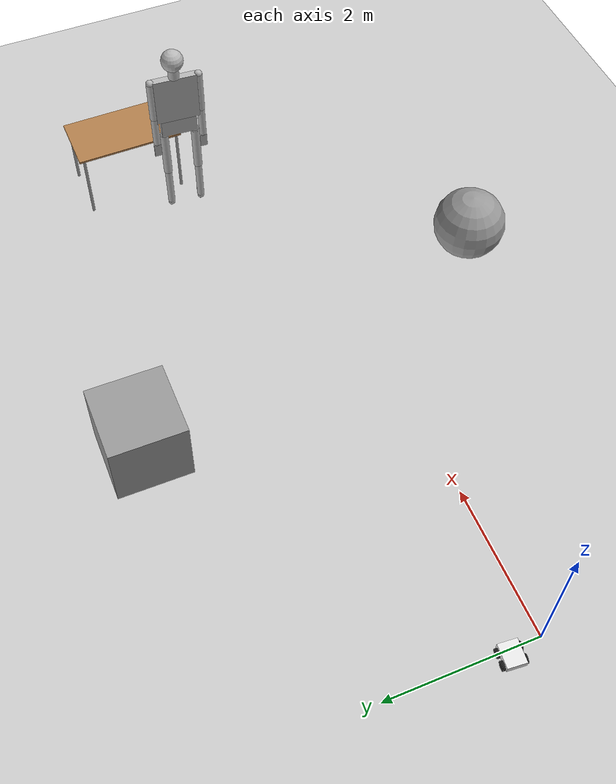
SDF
<sdf version="1.7">
 <world name="default">
  <model name="ground_plane">
   <static>1</static>
   <link name="link">
    <collision name="collision">
     <geometry><plane><normal>0 0 1</normal><size>100 100</size></plane></geometry>
     <surface>
      <contact><collide_bitmask>65535</collide_bitmask></contact>
      <friction><ode><mu>100</mu><mu2>50</mu2></ode></friction>
     </surface>
    </collision>
    <visual name="visual">
     <cast_shadows>0</cast_shadows>
     <geometry><plane><normal>0 0 1</normal><size>100 100</size></plane></geometry>
     <material>
      <script><uri>file://media/materials/scripts/gazebo.material</uri><name>Gazebo/Grey</name></script>
     </material>
    </visual>
   </link>
  </model>
  <model name="my_robot">
   <link name="base_footprint">
    <inertial>
     <pose>0.010714 0 0.098571 0 -0 0</pose>
     <mass>7</mass>
     <inertia>
      <ixx>0.0713607</ixx>
      <ixy>0</ixy>
      <ixz>0.00289286</ixz>
      <iyy>0.0436571</iyy>
      <iyz>-1.16852e-19</iyz>
      <izz>0.101646</izz>
     </inertia>
    </inertial>
    <collision name="base_footprint_fixed_joint_lump__base_link_collision">
     <pose>0 0 0.105 0 -0 0</pose>
     <geometry><box><size>0.3 0.25 0.09</size></box></geometry>
    </collision>
    <collision name="base_footprint_fixed_joint_lump__left_camera_link_collision_1">
     <pose>0.1525 0.075 0.11 0 -0 0</pose>
     <geometry><box><size>0.005 0.05 0.03</size></box></geometry>
    </collision>
    <collision name="base_footprint_fixed_joint_lump__left_wheel_front_link_collision_2">
     <pose>0.075 0.14 0.06 1.5708 -0 0</pose>
     <geometry><cylinder><length>0.03</length><radius>0.06</radius></cylinder></geometry>
     <surface><friction><ode><mu>0</mu><mu2>0</mu2></ode></friction></surface>
    </collision>
    <collision name="base_footprint_fixed_joint_lump__right_camera_link_collision_3">
     <pose>0.1525 -0.075 0.11 0 -0 0</pose>
     <geometry><box><size>0.005 0.05 0.03</size></box></geometry>
    </collision>
    <collision name="base_footprint_fixed_joint_lump__right_wheel_front_link_collision_4">
     <pose>0.075 -0.14 0.06 1.5708 -0 0</pose>
     <geometry><cylinder><length>0.03</length><radius>0.06</radius></cylinder></geometry>
     <surface><friction><ode><mu>0</mu><mu2>0</mu2></ode></friction></surface>
    </collision>
    <visual name="base_footprint_fixed_joint_lump__base_link_visual">
     <pose>0 0 0.105 0 -0 0</pose>
     <geometry><box><size>0.3 0.25 0.09</size></box></geometry>
     <material>
      <script><name>Gazebo/White</name><uri>file://media/materials/scripts/gazebo.material</uri></script>
     </material>
    </visual>
    <visual name="base_footprint_fixed_joint_lump__left_camera_link_visual_1">
     <pose>0.1525 0.075 0.11 0 -0 0</pose>
     <geometry><box><size>0.005 0.05 0.03</size></box></geometry>
     <material>
      <script><name>Gazebo/Gold</name><uri>file://media/materials/scripts/gazebo.material</uri></script>
     </material>
    </visual>
    <visual name="base_footprint_fixed_joint_lump__left_wheel_front_link_visual_2">
     <pose>0.075 0.14 0.06 1.5708 -0 0</pose>
     <geometry><cylinder><length>0.03</length><radius>0.06</radius></cylinder></geometry>
     <material>
      <script><name>Gazebo/Black</name><uri>file://media/materials/scripts/gazebo.material</uri></script>
     </material>
    </visual>
    <visual name="base_footprint_fixed_joint_lump__right_camera_link_visual_3">
     <pose>0.1525 -0.075 0.11 0 -0 0</pose>
     <geometry><box><size>0.005 0.05 0.03</size></box></geometry>
     <material>
      <script><name>Gazebo/Gold</name><uri>file://media/materials/scripts/gazebo.material</uri></script>
     </material>
    </visual>
    <visual name="base_footprint_fixed_joint_lump__right_wheel_front_link_visual_4">
     <pose>0.075 -0.14 0.06 1.5708 -0 0</pose>
     <geometry><cylinder><length>0.03</length><radius>0.06</radius></cylinder></geometry>
     <material>
      <script><name>Gazebo/Black</name><uri>file://media/materials/scripts/gazebo.material</uri></script>
     </material>
    </visual>
    <sensor name="left_camera_sensor" type="camera">
     <visualize>1</visualize>
     <update_rate>15</update_rate>
     <camera>
      <horizontal_fov>2.0944</horizontal_fov>
      <image><width>752</width><height>480</height><format>R8G8B8</format></image>
      <clip><near>0.1</near><far>100</far></clip>
      <distortion><k1>0</k1><k2>0</k2><k3>0</k3><p1>0</p1><p2>0</p2><center>376.5 240.5</center></distortion>
      <intrinsics><fx>217.08247</fx><fy>217.08247</fy><cx>376.5</cx><cy>240.5</cy></intrinsics>
     </camera>
     <plugin name="left_camera_controller" filename="libgazebo_ros_camera.so">
      <frame_name>left_camera_optical_link</frame_name>
      <camera_name>left_camera</camera_name>
      <image_width>752</image_width>
      <image_height>480</image_height>
      <ros>
       <namespace>/camera/left</namespace>
       <remapping>image_raw:=image</remapping>
       <parameter name="publish_image">1</parameter>
       <parameter name="publish_compressed">0</parameter>
       <parameter name="publish_depth">0</parameter>
       <parameter name="disable_pub_plugins">["compressed", "compressedDepth", "theora"]</parameter>
      </ros>
     </plugin>
     <pose>0.1525 0.075 0.11 0 -0 0</pose>
    </sensor>
    <sensor name="right_camera_sensor" type="camera">
     <visualize>1</visualize>
     <update_rate>15</update_rate>
     <camera>
      <horizontal_fov>2.0944</horizontal_fov>
      <image><width>752</width><height>480</height><format>R8G8B8</format></image>
      <clip><near>0.1</near><far>100</far></clip>
      <distortion><k1>0</k1><k2>0</k2><k3>0</k3><p1>0</p1><p2>0</p2><center>376.5 240.5</center></distortion>
      <intrinsics><fx>217.08247</fx><fy>217.08247</fy><cx>376.5</cx><cy>240.5</cy></intrinsics>
     </camera>
     <plugin name="right_camera_controller" filename="libgazebo_ros_camera.so">
      <frame_name>right_camera_optical_link</frame_name>
      <camera_name>right_camera</camera_name>
      <image_width>752</image_width>
      <image_height>480</image_height>
      <ros>
       <namespace>/camera/right</namespace>
       <remapping>image_raw:=image</remapping>
       <parameter name="publish_image">1</parameter>
       <parameter name="publish_compressed">0</parameter>
       <parameter name="publish_depth">0</parameter>
       <parameter name="disable_pub_plugins">["compressed", "compressedDepth", "theora"]</parameter>
      </ros>
     </plugin>
     <pose>0.1525 -0.075 0.11 0 -0 0</pose>
    </sensor>
   </link>
   <joint name="base_left_wheel_back_joint" type="revolute">
    <pose relative_to="base_footprint">-0.075 0.14 0.06 0 -0 0</pose>
    <parent>base_footprint</parent>
    <child>left_wheel_back_link</child>
    <axis>
     <xyz>0 1 0</xyz>
     <limit><effort>10</effort><velocity>10</velocity><lower>-1e+16</lower><upper>1e+16</upper></limit>
     <dynamics><spring_reference>0</spring_reference><spring_stiffness>0</spring_stiffness></dynamics>
    </axis>
   </joint>
   <link name="left_wheel_back_link">
    <pose relative_to="base_left_wheel_back_joint">0 0 0 0 -0 0</pose>
    <inertial>
     <pose>0 0 0 1.5708 -0 0</pose>
     <mass>0.5</mass>
     <inertia>
      <ixx>0.0004875</ixx>
      <ixy>0</ixy>
      <ixz>0</ixz>
      <iyy>0.0004875</iyy>
      <iyz>0</iyz>
      <izz>0.0009</izz>
     </inertia>
    </inertial>
    <collision name="left_wheel_back_link_collision">
     <pose>0 0 0 1.5708 -0 0</pose>
     <geometry><cylinder><length>0.03</length><radius>0.06</radius></cylinder></geometry>
    </collision>
    <visual name="left_wheel_back_link_visual">
     <pose>0 0 0 1.5708 -0 0</pose>
     <geometry><cylinder><length>0.03</length><radius>0.06</radius></cylinder></geometry>
     <material>
      <script><name>Gazebo/Black</name><uri>file://media/materials/scripts/gazebo.material</uri></script>
     </material>
    </visual>
   </link>
   <joint name="base_right_wheel_back_joint" type="revolute">
    <pose relative_to="base_footprint">-0.075 -0.14 0.06 0 -0 0</pose>
    <parent>base_footprint</parent>
    <child>right_wheel_back_link</child>
    <axis>
     <xyz>0 1 0</xyz>
     <limit><effort>10</effort><velocity>10</velocity><lower>-1e+16</lower><upper>1e+16</upper></limit>
     <dynamics><spring_reference>0</spring_reference><spring_stiffness>0</spring_stiffness></dynamics>
    </axis>
   </joint>
   <link name="right_wheel_back_link">
    <pose relative_to="base_right_wheel_back_joint">0 0 0 0 -0 0</pose>
    <inertial>
     <pose>0 0 0 1.5708 -0 0</pose>
     <mass>0.5</mass>
     <inertia>
      <ixx>0.0004875</ixx>
      <ixy>0</ixy>
      <ixz>0</ixz>
      <iyy>0.0004875</iyy>
      <iyz>0</iyz>
      <izz>0.0009</izz>
     </inertia>
    </inertial>
    <collision name="right_wheel_back_link_collision">
     <pose>0 0 0 1.5708 -0 0</pose>
     <geometry><cylinder><length>0.03</length><radius>0.06</radius></cylinder></geometry>
    </collision>
    <visual name="right_wheel_back_link_visual">
     <pose>0 0 0 1.5708 -0 0</pose>
     <geometry><cylinder><length>0.03</length><radius>0.06</radius></cylinder></geometry>
     <material>
      <script><name>Gazebo/Black</name><uri>file://media/materials/scripts/gazebo.material</uri></script>
     </material>
    </visual>
   </link>
   <static>0</static>
   <plugin name="diff_drive_controller" filename="libgazebo_ros_diff_drive.so">
    <update_rate>50</update_rate>
    <left_joint>base_left_wheel_back_joint</left_joint>
    <right_joint>base_right_wheel_back_joint</right_joint>
    <wheel_separation>0.28</wheel_separation>
    <wheel_diameter>0.12</wheel_diameter>
    <publish_odom>1</publish_odom>
    <publish_odom_tf>1</publish_odom_tf>
    <publish_wheel_tf>1</publish_wheel_tf>
    <odometry_topic>odom</odometry_topic>
    <odometry_frame>odom</odometry_frame>
    <robot_base_frame>base_footprint</robot_base_frame>
    <ros><namespace>/</namespace><remapping>cmd_vel:=cmd_vel</remapping><remapping>odom:=odom</remapping></ros>
    <max_wheel_torque>200</max_wheel_torque>
    <max_wheel_acceleration>10.0</max_wheel_acceleration>
    <command_topic>cmd_vel</command_topic>
   </plugin>
   <pose>-0.087835 0.442639 1e-06 -4e-06 3e-06 -0.090374</pose>
  </model>
  <model name="table_clone">
   <static>1</static>
   <link name="link">
    <collision name="surface">
     <pose>0 0 1 0 -0 0</pose>
     <geometry><box><size>1.5 0.8 0.03</size></box></geometry>
     <surface><friction><ode><mu>0.6</mu><mu2>0.6</mu2></ode></friction></surface>
    </collision>
    <visual name="visual1">
     <pose>0 0 1 0 -0 0</pose>
     <geometry><box><size>1.5 0.8 0.03</size></box></geometry>
     <material>
      <script><uri>file://media/materials/scripts/gazebo.material</uri><name>Gazebo/Wood</name></script>
     </material>
    </visual>
    <collision name="front_left_leg">
     <pose>0.68 0.38 0.5 0 -0 0</pose>
     <geometry><cylinder><radius>0.02</radius><length>1</length></cylinder></geometry>
    </collision>
    <visual name="front_left_leg">
     <pose>0.68 0.38 0.5 0 -0 0</pose>
     <geometry><cylinder><radius>0.02</radius><length>1</length></cylinder></geometry>
     <material>
      <script><uri>file://media/materials/scripts/gazebo.material</uri><name>Gazebo/Grey</name></script>
     </material>
    </visual>
    <collision name="front_right_leg">
     <pose>0.68 -0.38 0.5 0 -0 0</pose>
     <geometry><cylinder><radius>0.02</radius><length>1</length></cylinder></geometry>
    </collision>
    <visual name="front_right_leg">
     <pose>0.68 -0.38 0.5 0 -0 0</pose>
     <geometry><cylinder><radius>0.02</radius><length>1</length></cylinder></geometry>
     <material>
      <script><uri>file://media/materials/scripts/gazebo.material</uri><name>Gazebo/Grey</name></script>
     </material>
    </visual>
    <collision name="back_right_leg">
     <pose>-0.68 -0.38 0.5 0 -0 0</pose>
     <geometry><cylinder><radius>0.02</radius><length>1</length></cylinder></geometry>
    </collision>
    <visual name="back_right_leg">
     <pose>-0.68 -0.38 0.5 0 -0 0</pose>
     <geometry><cylinder><radius>0.02</radius><length>1</length></cylinder></geometry>
     <material>
      <script><uri>file://media/materials/scripts/gazebo.material</uri><name>Gazebo/Grey</name></script>
     </material>
    </visual>
    <collision name="back_left_leg">
     <pose>-0.68 0.38 0.5 0 -0 0</pose>
     <geometry><cylinder><radius>0.02</radius><length>1</length></cylinder></geometry>
    </collision>
    <visual name="back_left_leg">
     <pose>-0.68 0.38 0.5 0 -0 0</pose>
     <geometry><cylinder><radius>0.02</radius><length>1</length></cylinder></geometry>
     <material>
      <script><uri>file://media/materials/scripts/gazebo.material</uri><name>Gazebo/Grey</name></script>
     </material>
    </visual>
   </link>
   <pose>8.57439 2.15783 0 0 -0 1.58235</pose>
  </model>
  <model name="unit_sphere_0">
   <pose>5.504 -1.8854 0.5 0 -0 0</pose>
   <link name="link">
    <inertial>
     <mass>1</mass>
     <inertia><ixx>0.1</ixx><ixy>0</ixy><ixz>0</ixz><iyy>0.1</iyy><iyz>0</iyz><izz>0.1</izz></inertia>
    </inertial>
    <collision name="collision"><geometry><sphere><radius>0.5</radius></sphere></geometry></collision>
    <visual name="visual">
     <geometry><sphere><radius>0.5</radius></sphere></geometry>
     <material>
      <script><name>Gazebo/Grey</name><uri>file://media/materials/scripts/gazebo.material</uri></script>
     </material>
    </visual>
   </link>
  </model>
  <model name="unit_box_0_clone">
   <pose>3.98975 3.42562 0.499995 0 -1e-05 0</pose>
   <link name="link">
    <inertial>
     <mass>1</mass>
     <inertia>
      <ixx>0.166667</ixx>
      <ixy>0</ixy>
      <ixz>0</ixz>
      <iyy>0.166667</iyy>
      <iyz>0</iyz>
      <izz>0.166667</izz>
     </inertia>
    </inertial>
    <collision name="collision"><geometry><box><size>1 1 1</size></box></geometry></collision>
    <visual name="visual">
     <geometry><box><size>1 1 1</size></box></geometry>
     <material>
      <script><name>Gazebo/Grey</name><uri>file://media/materials/scripts/gazebo.material</uri></script>
     </material>
    </visual>
   </link>
  </model>
  <model name="ragdoll_clone_0_clone">
   <pose>7.84412 1.51237 1.39999 -1e-06 0.002388 -0.069914</pose>
   <link name="hip">
    <inertial>
     <inertia><ixx>0.1</ixx><ixy>0</ixy><ixz>0</ixz><iyy>0.1</iyy><iyz>0</iyz><izz>0.1</izz></inertia>
     <mass>10</mass>
    </inertial>
    <collision name="hip_geom">
     <pose>0 0 0.125 0 -0 0</pose>
     <geometry><box><size>0.1 0.5 0.25</size></box></geometry>
     <surface>
      <friction><ode><mu>-1</mu><mu2>-1</mu2><fdir1>0 0 0</fdir1><slip1>0</slip1><slip2>0</slip2></ode></friction>
      <bounce><restitution_coefficient>0</restitution_coefficient><threshold>100000</threshold></bounce>
      <contact>
       <ode>
        <soft_cfm>0</soft_cfm>
        <soft_erp>0.2</soft_erp>
        <kp>1e+12</kp>
        <kd>1</kd>
        <max_vel>0</max_vel>
        <min_depth>0.001</min_depth>
       </ode>
      </contact>
     </surface>
    </collision>
    <visual name="hip_geom_visual">
     <pose>0 0 0.125 0 -0 0</pose>
     <geometry><box><size>0.1 0.5 0.25</size></box></geometry>
    </visual>
    <gravity>0</gravity>
   </link>
   <link name="l_thigh_pan">
    <pose>0 0.22 0 0 -0 0</pose>
    <inertial>
     <inertia><ixx>0.01</ixx><ixy>0</ixy><ixz>0</ixz><iyy>0.01</iyy><iyz>0</iyz><izz>0.01</izz></inertia>
     <mass>1</mass>
    </inertial>
    <collision name="l_thigh_pan_geom">
     <pose>0 0 -0.03 0 -0 0</pose>
     <geometry><sphere><radius>0.06</radius></sphere></geometry>
     <surface>
      <friction><ode><mu>-1</mu><mu2>-1</mu2><fdir1>0 0 0</fdir1><slip1>0</slip1><slip2>0</slip2></ode></friction>
      <bounce><restitution_coefficient>0</restitution_coefficient><threshold>100000</threshold></bounce>
      <contact>
       <ode>
        <soft_cfm>0</soft_cfm>
        <soft_erp>0.2</soft_erp>
        <kp>1e+12</kp>
        <kd>1</kd>
        <max_vel>0</max_vel>
        <min_depth>0.001</min_depth>
       </ode>
      </contact>
     </surface>
    </collision>
    <visual name="l_thigh_pan_geom_visual">
     <pose>0 0 -0.03 0 -0 0</pose>
     <geometry><sphere><radius>0.06</radius></sphere></geometry>
    </visual>
    <gravity>0</gravity>
   </link>
   <link name="l_thigh_lift">
    <pose>0 0.22 0 0 -0 0</pose>
    <inertial>
     <inertia><ixx>0.05</ixx><ixy>0</ixy><ixz>0</ixz><iyy>0.05</iyy><iyz>0</iyz><izz>0.05</izz></inertia>
     <mass>5</mass>
    </inertial>
    <collision name="l_thigh_lift_geom">
     <pose>0 0 -0.35 0 -0 0</pose>
     <geometry><cylinder><radius>0.06</radius><length>0.7</length></cylinder></geometry>
     <surface>
      <friction><ode><mu>-1</mu><mu2>-1</mu2><fdir1>0 0 0</fdir1><slip1>0</slip1><slip2>0</slip2></ode></friction>
      <bounce><restitution_coefficient>0</restitution_coefficient><threshold>100000</threshold></bounce>
      <contact>
       <ode>
        <soft_cfm>0</soft_cfm>
        <soft_erp>0.2</soft_erp>
        <kp>1e+12</kp>
        <kd>1</kd>
        <max_vel>0</max_vel>
        <min_depth>0.001</min_depth>
       </ode>
      </contact>
     </surface>
    </collision>
    <visual name="l_thigh_lift_geom_visual">
     <pose>0 0 -0.35 0 -0 0</pose>
     <geometry><cylinder><radius>0.06</radius><length>0.7</length></cylinder></geometry>
    </visual>
    <gravity>0</gravity>
   </link>
   <link name="l_calf">
    <pose>0 0.22 -0.7 0 -0 0</pose>
    <inertial>
     <inertia><ixx>0.02</ixx><ixy>0</ixy><ixz>0</ixz><iyy>0.02</iyy><iyz>0</iyz><izz>0.02</izz></inertia>
     <mass>2</mass>
    </inertial>
    <collision name="l_calf_geom">
     <pose>0 0 -0.3 0 -0 0</pose>
     <geometry><cylinder><radius>0.05</radius><length>0.6</length></cylinder></geometry>
     <surface>
      <friction><ode><mu>-1</mu><mu2>-1</mu2><fdir1>0 0 0</fdir1><slip1>0</slip1><slip2>0</slip2></ode></friction>
      <bounce><restitution_coefficient>0</restitution_coefficient><threshold>100000</threshold></bounce>
      <contact>
       <ode>
        <soft_cfm>0</soft_cfm>
        <soft_erp>0.2</soft_erp>
        <kp>1e+12</kp>
        <kd>1</kd>
        <max_vel>0</max_vel>
        <min_depth>0.001</min_depth>
       </ode>
      </contact>
     </surface>
    </collision>
    <visual name="l_calf_geom_visual">
     <pose>0 0 -0.3 0 -0 0</pose>
     <geometry><cylinder><radius>0.05</radius><length>0.6</length></cylinder></geometry>
    </visual>
    <gravity>0</gravity>
   </link>
   <link name="l_ankle">
    <pose>0 0.22 -1.325 0 -0 0</pose>
    <inertial>
     <inertia><ixx>0.01</ixx><ixy>0</ixy><ixz>0</ixz><iyy>0.01</iyy><iyz>0</iyz><izz>0.01</izz></inertia>
     <mass>1</mass>
    </inertial>
    <collision name="l_ankle_geom">
     <geometry><sphere><radius>0.05</radius></sphere></geometry>
     <surface>
      <friction><ode><mu>-1</mu><mu2>-1</mu2><fdir1>0 0 0</fdir1><slip1>0</slip1><slip2>0</slip2></ode></friction>
      <bounce><restitution_coefficient>0</restitution_coefficient><threshold>100000</threshold></bounce>
      <contact>
       <ode>
        <soft_cfm>0</soft_cfm>
        <soft_erp>0.2</soft_erp>
        <kp>1e+12</kp>
        <kd>1</kd>
        <max_vel>0</max_vel>
        <min_depth>0.001</min_depth>
       </ode>
      </contact>
     </surface>
    </collision>
    <visual name="l_ankle_geom_visual"><geometry><sphere><radius>0.05</radius></sphere></geometry></visual>
    <gravity>0</gravity>
   </link>
   <link name="l_foot">
    <pose>0 0.22 -1.35 0 -0 0</pose>
    <inertial>
     <pose>0.1 0 0 0 -0 0</pose>
     <inertia><ixx>0.01</ixx><ixy>0</ixy><ixz>0</ixz><iyy>0.01</iyy><iyz>0</iyz><izz>0.01</izz></inertia>
     <mass>1</mass>
    </inertial>
    <collision name="l_foot_geom">
     <pose>0.1 0 -0.025 0 -0 0</pose>
     <geometry><box><size>0.2 0.03 0.05</size></box></geometry>
     <surface>
      <friction><ode><mu>-1</mu><mu2>-1</mu2><fdir1>0 0 0</fdir1><slip1>0</slip1><slip2>0</slip2></ode></friction>
      <bounce><restitution_coefficient>0</restitution_coefficient><threshold>100000</threshold></bounce>
      <contact>
       <ode>
        <soft_cfm>0</soft_cfm>
        <soft_erp>0.2</soft_erp>
        <kp>1e+12</kp>
        <kd>1</kd>
        <max_vel>0</max_vel>
        <min_depth>0.001</min_depth>
       </ode>
      </contact>
     </surface>
    </collision>
    <visual name="l_foot_geom_visual">
     <pose>0.1 0 -0.025 0 -0 0</pose>
     <geometry><box><size>0.2 0.03 0.05</size></box></geometry>
    </visual>
   </link>
   <link name="r_thigh_pan">
    <pose>0 -0.22 0 0 -0 0</pose>
    <inertial>
     <inertia><ixx>0.01</ixx><ixy>0</ixy><ixz>0</ixz><iyy>0.01</iyy><iyz>0</iyz><izz>0.01</izz></inertia>
     <mass>1</mass>
    </inertial>
    <collision name="r_thigh_pan_geom">
     <pose>0 0 -0.03 0 -0 0</pose>
     <geometry><sphere><radius>0.06</radius></sphere></geometry>
     <surface>
      <friction><ode><mu>-1</mu><mu2>-1</mu2><fdir1>0 0 0</fdir1><slip1>0</slip1><slip2>0</slip2></ode></friction>
      <bounce><restitution_coefficient>0</restitution_coefficient><threshold>100000</threshold></bounce>
      <contact>
       <ode>
        <soft_cfm>0</soft_cfm>
        <soft_erp>0.2</soft_erp>
        <kp>1e+12</kp>
        <kd>1</kd>
        <max_vel>0</max_vel>
        <min_depth>0.001</min_depth>
       </ode>
      </contact>
     </surface>
    </collision>
    <visual name="r_thigh_pan_geom_visual">
     <pose>0 0 -0.03 0 -0 0</pose>
     <geometry><sphere><radius>0.06</radius></sphere></geometry>
    </visual>
    <gravity>0</gravity>
   </link>
   <link name="r_thigh_lift">
    <pose>0 -0.22 0 0 -0 0</pose>
    <inertial>
     <inertia><ixx>0.05</ixx><ixy>0</ixy><ixz>0</ixz><iyy>0.05</iyy><iyz>0</iyz><izz>0.05</izz></inertia>
     <mass>5</mass>
    </inertial>
    <collision name="r_thigh_lift_geom">
     <pose>0 0 -0.35 0 -0 0</pose>
     <geometry><cylinder><radius>0.06</radius><length>0.7</length></cylinder></geometry>
     <surface>
      <friction><ode><mu>-1</mu><mu2>-1</mu2><fdir1>0 0 0</fdir1><slip1>0</slip1><slip2>0</slip2></ode></friction>
      <bounce><restitution_coefficient>0</restitution_coefficient><threshold>100000</threshold></bounce>
      <contact>
       <ode>
        <soft_cfm>0</soft_cfm>
        <soft_erp>0.2</soft_erp>
        <kp>1e+12</kp>
        <kd>1</kd>
        <max_vel>0</max_vel>
        <min_depth>0.001</min_depth>
       </ode>
      </contact>
     </surface>
    </collision>
    <visual name="r_thigh_lift_geom_visual">
     <pose>0 0 -0.35 0 -0 0</pose>
     <geometry><cylinder><radius>0.06</radius><length>0.7</length></cylinder></geometry>
    </visual>
    <gravity>0</gravity>
   </link>
   <link name="r_calf">
    <pose>0 -0.22 -0.7 0 -0 0</pose>
    <inertial>
     <inertia><ixx>0.02</ixx><ixy>0</ixy><ixz>0</ixz><iyy>0.02</iyy><iyz>0</iyz><izz>0.02</izz></inertia>
     <mass>2</mass>
    </inertial>
    <collision name="r_calf_geom">
     <pose>0 0 -0.3 0 -0 0</pose>
     <geometry><cylinder><radius>0.05</radius><length>0.6</length></cylinder></geometry>
     <surface>
      <friction><ode><mu>-1</mu><mu2>-1</mu2><fdir1>0 0 0</fdir1><slip1>0</slip1><slip2>0</slip2></ode></friction>
      <bounce><restitution_coefficient>0</restitution_coefficient><threshold>100000</threshold></bounce>
      <contact>
       <ode>
        <soft_cfm>0</soft_cfm>
        <soft_erp>0.2</soft_erp>
        <kp>1e+12</kp>
        <kd>1</kd>
        <max_vel>0</max_vel>
        <min_depth>0.001</min_depth>
       </ode>
      </contact>
     </surface>
    </collision>
    <visual name="r_calf_geom_visual">
     <pose>0 0 -0.3 0 -0 0</pose>
     <geometry><cylinder><radius>0.05</radius><length>0.6</length></cylinder></geometry>
    </visual>
    <gravity>0</gravity>
   </link>
   <link name="r_ankle">
    <pose>0 -0.22 -1.325 0 -0 0</pose>
    <inertial>
     <inertia><ixx>0.01</ixx><ixy>0</ixy><ixz>0</ixz><iyy>0.01</iyy><iyz>0</iyz><izz>0.01</izz></inertia>
     <mass>1</mass>
    </inertial>
    <collision name="r_ankle_geom">
     <geometry><sphere><radius>0.05</radius></sphere></geometry>
     <surface>
      <friction><ode><mu>-1</mu><mu2>-1</mu2><fdir1>0 0 0</fdir1><slip1>0</slip1><slip2>0</slip2></ode></friction>
      <bounce><restitution_coefficient>0</restitution_coefficient><threshold>100000</threshold></bounce>
      <contact>
       <ode>
        <soft_cfm>0</soft_cfm>
        <soft_erp>0.2</soft_erp>
        <kp>1e+12</kp>
        <kd>1</kd>
        <max_vel>0</max_vel>
        <min_depth>0.001</min_depth>
       </ode>
      </contact>
     </surface>
    </collision>
    <visual name="r_ankle_geom_visual"><geometry><sphere><radius>0.05</radius></sphere></geometry></visual>
    <gravity>0</gravity>
   </link>
   <link name="r_foot">
    <pose>0 -0.22 -1.35 0 -0 0</pose>
    <inertial>
     <pose>0.1 0 0 0 -0 0</pose>
     <inertia><ixx>0.01</ixx><ixy>0</ixy><ixz>0</ixz><iyy>0.01</iyy><iyz>0</iyz><izz>0.01</izz></inertia>
     <mass>1</mass>
    </inertial>
    <collision name="r_foot_geom">
     <pose>0.1 0 -0.025 0 -0 0</pose>
     <geometry><box><size>0.2 0.03 0.05</size></box></geometry>
     <surface>
      <friction><ode><mu>-1</mu><mu2>-1</mu2><fdir1>0 0 0</fdir1><slip1>0</slip1><slip2>0</slip2></ode></friction>
      <bounce><restitution_coefficient>0</restitution_coefficient><threshold>100000</threshold></bounce>
      <contact>
       <ode>
        <soft_cfm>0</soft_cfm>
        <soft_erp>0.2</soft_erp>
        <kp>1e+12</kp>
        <kd>1</kd>
        <max_vel>0</max_vel>
        <min_depth>0.001</min_depth>
       </ode>
      </contact>
     </surface>
    </collision>
    <visual name="r_foot_geom_visual">
     <pose>0.1 0 -0.025 0 -0 0</pose>
     <geometry><box><size>0.2 0.03 0.05</size></box></geometry>
    </visual>
   </link>
   <link name="torso">
    <pose>0 0 0.25 0 -0 0</pose>
    <inertial>
     <inertia><ixx>0.3</ixx><ixy>0</ixy><ixz>0</ixz><iyy>0.3</iyy><iyz>0</iyz><izz>0.3</izz></inertia>
     <mass>30</mass>
    </inertial>
    <collision name="torso_geom">
     <pose>0 0 0.35 0 -0 0</pose>
     <geometry><box><size>0.1 0.6 0.7</size></box></geometry>
     <surface>
      <friction><ode><mu>-1</mu><mu2>-1</mu2><fdir1>0 0 0</fdir1><slip1>0</slip1><slip2>0</slip2></ode></friction>
      <bounce><restitution_coefficient>0</restitution_coefficient><threshold>100000</threshold></bounce>
      <contact>
       <ode>
        <soft_cfm>0</soft_cfm>
        <soft_erp>0.2</soft_erp>
        <kp>1e+12</kp>
        <kd>1</kd>
        <max_vel>0</max_vel>
        <min_depth>0.001</min_depth>
       </ode>
      </contact>
     </surface>
    </collision>
    <visual name="torso_geom_visual">
     <pose>0 0 0.35 0 -0 0</pose>
     <geometry><box><size>0.1 0.6 0.7</size></box></geometry>
    </visual>
    <gravity>0</gravity>
   </link>
   <link name="l_shoulder">
    <pose>0 0.3275 0.9225 0 -0 0</pose>
    <inertial>
     <inertia><ixx>0.01</ixx><ixy>0</ixy><ixz>0</ixz><iyy>0.01</iyy><iyz>0</iyz><izz>0.01</izz></inertia>
     <mass>1</mass>
    </inertial>
    <collision name="l_shoulder_geom">
     <geometry><sphere><radius>0.055</radius></sphere></geometry>
     <surface>
      <friction><ode><mu>-1</mu><mu2>-1</mu2><fdir1>0 0 0</fdir1><slip1>0</slip1><slip2>0</slip2></ode></friction>
      <bounce><restitution_coefficient>0</restitution_coefficient><threshold>100000</threshold></bounce>
      <contact>
       <ode>
        <soft_cfm>0</soft_cfm>
        <soft_erp>0.2</soft_erp>
        <kp>1e+12</kp>
        <kd>1</kd>
        <max_vel>0</max_vel>
        <min_depth>0.001</min_depth>
       </ode>
      </contact>
     </surface>
    </collision>
    <visual name="l_shoulder_geom_visual"><geometry><sphere><radius>0.055</radius></sphere></geometry></visual>
    <gravity>0</gravity>
   </link>
   <link name="l_upper_arm">
    <pose>0 0.3275 0.9225 0 -0 0</pose>
    <inertial>
     <inertia><ixx>0.02</ixx><ixy>0</ixy><ixz>0</ixz><iyy>0.02</iyy><iyz>0</iyz><izz>0.02</izz></inertia>
     <mass>2</mass>
    </inertial>
    <collision name="l_upper_arm_geom">
     <pose>0 0 -0.3 0 -0 0</pose>
     <geometry><cylinder><radius>0.055</radius><length>0.6</length></cylinder></geometry>
     <surface>
      <friction><ode><mu>-1</mu><mu2>-1</mu2><fdir1>0 0 0</fdir1><slip1>0</slip1><slip2>0</slip2></ode></friction>
      <bounce><restitution_coefficient>0</restitution_coefficient><threshold>100000</threshold></bounce>
      <contact>
       <ode>
        <soft_cfm>0</soft_cfm>
        <soft_erp>0.2</soft_erp>
        <kp>1e+12</kp>
        <kd>1</kd>
        <max_vel>0</max_vel>
        <min_depth>0.001</min_depth>
       </ode>
      </contact>
     </surface>
    </collision>
    <visual name="l_upper_arm_geom_visual">
     <pose>0 0 -0.3 0 -0 0</pose>
     <geometry><cylinder><radius>0.055</radius><length>0.6</length></cylinder></geometry>
    </visual>
    <gravity>0</gravity>
   </link>
   <link name="l_forearm">
    <pose>0 0.3275 0.3225 0 -0 0</pose>
    <inertial>
     <inertia><ixx>0.01</ixx><ixy>0</ixy><ixz>0</ixz><iyy>0.01</iyy><iyz>0</iyz><izz>0.01</izz></inertia>
     <mass>1</mass>
    </inertial>
    <collision name="l_forearm_geom">
     <pose>0 0 -0.225 0 -0 0</pose>
     <geometry><cylinder><radius>0.05</radius><length>0.45</length></cylinder></geometry>
     <surface>
      <friction><ode><mu>-1</mu><mu2>-1</mu2><fdir1>0 0 0</fdir1><slip1>0</slip1><slip2>0</slip2></ode></friction>
      <bounce><restitution_coefficient>0</restitution_coefficient><threshold>100000</threshold></bounce>
      <contact>
       <ode>
        <soft_cfm>0</soft_cfm>
        <soft_erp>0.2</soft_erp>
        <kp>1e+12</kp>
        <kd>1</kd>
        <max_vel>0</max_vel>
        <min_depth>0.001</min_depth>
       </ode>
      </contact>
     </surface>
    </collision>
    <visual name="l_forearm_geom_visual">
     <pose>0 0 -0.225 0 -0 0</pose>
     <geometry><cylinder><radius>0.05</radius><length>0.45</length></cylinder></geometry>
    </visual>
    <gravity>0</gravity>
   </link>
   <link name="l_wrist">
    <pose>0 0.3275 -0.1425 0 -0 0</pose>
    <inertial>
     <inertia><ixx>0.01</ixx><ixy>0</ixy><ixz>0</ixz><iyy>0.01</iyy><iyz>0</iyz><izz>0.01</izz></inertia>
     <mass>1</mass>
    </inertial>
    <collision name="l_wrist_geom">
     <geometry><sphere><radius>0.03</radius></sphere></geometry>
     <surface>
      <friction><ode><mu>-1</mu><mu2>-1</mu2><fdir1>0 0 0</fdir1><slip1>0</slip1><slip2>0</slip2></ode></friction>
      <bounce><restitution_coefficient>0</restitution_coefficient><threshold>100000</threshold></bounce>
      <contact>
       <ode>
        <soft_cfm>0</soft_cfm>
        <soft_erp>0.2</soft_erp>
        <kp>1e+12</kp>
        <kd>1</kd>
        <max_vel>0</max_vel>
        <min_depth>0.001</min_depth>
       </ode>
      </contact>
     </surface>
    </collision>
    <visual name="l_wrist_geom_visual"><geometry><sphere><radius>0.03</radius></sphere></geometry></visual>
    <gravity>0</gravity>
   </link>
   <link name="l_hand">
    <pose>0 0.3275 -0.1575 0 -0 0</pose>
    <inertial>
     <inertia><ixx>0.01</ixx><ixy>0</ixy><ixz>0</ixz><iyy>0.01</iyy><iyz>0</iyz><izz>0.01</izz></inertia>
     <mass>1</mass>
    </inertial>
    <collision name="l_hand_geom">
     <pose>0 0 -0.1 0 -0 0</pose>
     <geometry><box><size>0.03 0.1 0.2</size></box></geometry>
     <surface>
      <friction><ode><mu>-1</mu><mu2>-1</mu2><fdir1>0 0 0</fdir1><slip1>0</slip1><slip2>0</slip2></ode></friction>
      <bounce><restitution_coefficient>0</restitution_coefficient><threshold>100000</threshold></bounce>
      <contact>
       <ode>
        <soft_cfm>0</soft_cfm>
        <soft_erp>0.2</soft_erp>
        <kp>1e+12</kp>
        <kd>1</kd>
        <max_vel>0</max_vel>
        <min_depth>0.001</min_depth>
       </ode>
      </contact>
     </surface>
    </collision>
    <visual name="l_hand_geom_visual">
     <pose>0 0 -0.1 0 -0 0</pose>
     <geometry><box><size>0.03 0.1 0.2</size></box></geometry>
    </visual>
    <gravity>0</gravity>
   </link>
   <link name="neck">
    <pose>0 0 0.95 0 -0 0</pose>
    <inertial>
     <inertia><ixx>0.01</ixx><ixy>0</ixy><ixz>0</ixz><iyy>0.01</iyy><iyz>0</iyz><izz>0.01</izz></inertia>
     <mass>1</mass>
    </inertial>
    <collision name="neck_geom">
     <pose>0 0 0.1 0 -0 0</pose>
     <geometry><cylinder><radius>0.075</radius><length>0.2</length></cylinder></geometry>
     <surface>
      <friction><ode><mu>-1</mu><mu2>-1</mu2><fdir1>0 0 0</fdir1><slip1>0</slip1><slip2>0</slip2></ode></friction>
      <bounce><restitution_coefficient>0</restitution_coefficient><threshold>100000</threshold></bounce>
      <contact>
       <ode>
        <soft_cfm>0</soft_cfm>
        <soft_erp>0.2</soft_erp>
        <kp>1e+12</kp>
        <kd>1</kd>
        <max_vel>0</max_vel>
        <min_depth>0.001</min_depth>
       </ode>
      </contact>
     </surface>
    </collision>
    <visual name="neck_geom_visual">
     <pose>0 0 0.1 0 -0 0</pose>
     <geometry><cylinder><radius>0.075</radius><length>0.2</length></cylinder></geometry>
    </visual>
    <gravity>0</gravity>
   </link>
   <link name="head">
    <pose>0 0 1.225 0 -0 0</pose>
    <inertial>
     <inertia><ixx>0.1</ixx><ixy>0</ixy><ixz>0</ixz><iyy>0.1</iyy><iyz>0</iyz><izz>0.1</izz></inertia>
     <mass>10</mass>
    </inertial>
    <collision name="head_geom">
     <geometry><sphere><radius>0.15</radius></sphere></geometry>
     <surface>
      <friction><ode><mu>-1</mu><mu2>-1</mu2><fdir1>0 0 0</fdir1><slip1>0</slip1><slip2>0</slip2></ode></friction>
      <bounce><restitution_coefficient>0</restitution_coefficient><threshold>100000</threshold></bounce>
      <contact>
       <ode>
        <soft_cfm>0</soft_cfm>
        <soft_erp>0.2</soft_erp>
        <kp>1e+12</kp>
        <kd>1</kd>
        <max_vel>0</max_vel>
        <min_depth>0.001</min_depth>
       </ode>
      </contact>
     </surface>
    </collision>
    <visual name="head_geom_visual"><geometry><sphere><radius>0.15</radius></sphere></geometry></visual>
    <gravity>0</gravity>
   </link>
   <link name="r_shoulder">
    <pose>0 -0.3275 0.9225 0 -0 0</pose>
    <inertial>
     <inertia><ixx>0.01</ixx><ixy>0</ixy><ixz>0</ixz><iyy>0.01</iyy><iyz>0</iyz><izz>0.01</izz></inertia>
     <mass>1</mass>
    </inertial>
    <collision name="r_shoulder_geom">
     <geometry><sphere><radius>0.055</radius></sphere></geometry>
     <surface>
      <friction><ode><mu>-1</mu><mu2>-1</mu2><fdir1>0 0 0</fdir1><slip1>0</slip1><slip2>0</slip2></ode></friction>
      <bounce><restitution_coefficient>0</restitution_coefficient><threshold>100000</threshold></bounce>
      <contact>
       <ode>
        <soft_cfm>0</soft_cfm>
        <soft_erp>0.2</soft_erp>
        <kp>1e+12</kp>
        <kd>1</kd>
        <max_vel>0</max_vel>
        <min_depth>0.001</min_depth>
       </ode>
      </contact>
     </surface>
    </collision>
    <visual name="r_shoulder_geom_visual"><geometry><sphere><radius>0.055</radius></sphere></geometry></visual>
    <gravity>0</gravity>
   </link>
   <link name="r_upper_arm">
    <pose>0 -0.3275 0.9225 0 -0 0</pose>
    <inertial>
     <inertia><ixx>0.02</ixx><ixy>0</ixy><ixz>0</ixz><iyy>0.02</iyy><iyz>0</iyz><izz>0.02</izz></inertia>
     <mass>2</mass>
    </inertial>
    <collision name="r_upper_arm_geom">
     <pose>0 0 -0.3 0 -0 0</pose>
     <geometry><cylinder><radius>0.055</radius><length>0.6</length></cylinder></geometry>
     <surface>
      <friction><ode><mu>-1</mu><mu2>-1</mu2><fdir1>0 0 0</fdir1><slip1>0</slip1><slip2>0</slip2></ode></friction>
      <bounce><restitution_coefficient>0</restitution_coefficient><threshold>100000</threshold></bounce>
      <contact>
       <ode>
        <soft_cfm>0</soft_cfm>
        <soft_erp>0.2</soft_erp>
        <kp>1e+12</kp>
        <kd>1</kd>
        <max_vel>0</max_vel>
        <min_depth>0.001</min_depth>
       </ode>
      </contact>
     </surface>
    </collision>
    <visual name="r_upper_arm_geom_visual">
     <pose>0 0 -0.3 0 -0 0</pose>
     <geometry><cylinder><radius>0.055</radius><length>0.6</length></cylinder></geometry>
    </visual>
    <gravity>0</gravity>
   </link>
   <link name="r_forearm">
    <pose>0 -0.3275 0.3225 0 -0 0</pose>
    <inertial>
     <inertia><ixx>0.01</ixx><ixy>0</ixy><ixz>0</ixz><iyy>0.01</iyy><iyz>0</iyz><izz>0.01</izz></inertia>
     <mass>1</mass>
    </inertial>
    <collision name="r_forearm_geom">
     <pose>0 0 -0.225 0 -0 0</pose>
     <geometry><cylinder><radius>0.05</radius><length>0.45</length></cylinder></geometry>
     <surface>
      <friction><ode><mu>-1</mu><mu2>-1</mu2><fdir1>0 0 0</fdir1><slip1>0</slip1><slip2>0</slip2></ode></friction>
      <bounce><restitution_coefficient>0</restitution_coefficient><threshold>100000</threshold></bounce>
      <contact>
       <ode>
        <soft_cfm>0</soft_cfm>
        <soft_erp>0.2</soft_erp>
        <kp>1e+12</kp>
        <kd>1</kd>
        <max_vel>0</max_vel>
        <min_depth>0.001</min_depth>
       </ode>
      </contact>
     </surface>
    </collision>
    <visual name="r_forearm_geom_visual">
     <pose>0 0 -0.225 0 -0 0</pose>
     <geometry><cylinder><radius>0.05</radius><length>0.45</length></cylinder></geometry>
    </visual>
    <gravity>0</gravity>
   </link>
   <link name="r_wrist">
    <pose>0 -0.3275 -0.1425 0 -0 0</pose>
    <inertial>
     <inertia><ixx>0.01</ixx><ixy>0</ixy><ixz>0</ixz><iyy>0.01</iyy><iyz>0</iyz><izz>0.01</izz></inertia>
     <mass>1</mass>
    </inertial>
    <collision name="r_wrist_geom">
     <geometry><sphere><radius>0.03</radius></sphere></geometry>
     <surface>
      <friction><ode><mu>-1</mu><mu2>-1</mu2><fdir1>0 0 0</fdir1><slip1>0</slip1><slip2>0</slip2></ode></friction>
      <bounce><restitution_coefficient>0</restitution_coefficient><threshold>100000</threshold></bounce>
      <contact>
       <ode>
        <soft_cfm>0</soft_cfm>
        <soft_erp>0.2</soft_erp>
        <kp>1e+12</kp>
        <kd>1</kd>
        <max_vel>0</max_vel>
        <min_depth>0.001</min_depth>
       </ode>
      </contact>
     </surface>
    </collision>
    <visual name="r_wrist_geom_visual"><geometry><sphere><radius>0.03</radius></sphere></geometry></visual>
    <gravity>0</gravity>
   </link>
   <link name="r_hand">
    <pose>0 -0.3275 -0.1575 0 -0 0</pose>
    <inertial>
     <inertia><ixx>0.01</ixx><ixy>0</ixy><ixz>0</ixz><iyy>0.01</iyy><iyz>0</iyz><izz>0.01</izz></inertia>
     <mass>1</mass>
    </inertial>
    <collision name="r_hand_geom">
     <pose>0 0 -0.1 0 -0 0</pose>
     <geometry><box><size>0.03 0.1 0.2</size></box></geometry>
     <surface>
      <friction><ode><mu>-1</mu><mu2>-1</mu2><fdir1>0 0 0</fdir1><slip1>0</slip1><slip2>0</slip2></ode></friction>
      <bounce><restitution_coefficient>0</restitution_coefficient><threshold>100000</threshold></bounce>
      <contact>
       <ode>
        <soft_cfm>0</soft_cfm>
        <soft_erp>0.2</soft_erp>
        <kp>1e+12</kp>
        <kd>1</kd>
        <max_vel>0</max_vel>
        <min_depth>0.001</min_depth>
       </ode>
      </contact>
     </surface>
    </collision>
    <visual name="r_hand_geom_visual">
     <pose>0 0 -0.1 0 -0 0</pose>
     <geometry><box><size>0.03 0.1 0.2</size></box></geometry>
    </visual>
    <gravity>0</gravity>
   </link>
   <joint name="l_thigh_pan_joint" type="revolute">
    <parent>hip</parent>
    <child>l_thigh_pan</child>
    <axis>
     <dynamics>
      <damping>0</damping>
      <friction>0</friction>
      <spring_reference>0</spring_reference>
      <spring_stiffness>0</spring_stiffness>
     </dynamics>
     <limit><lower>-1.5708</lower><upper>1.5708</upper><effort>0</effort><velocity>0</velocity></limit>
     <xyz expressed_in="__model__">0 0 1</xyz>
    </axis>
   </joint>
   <joint name="l_thigh_lift_joint" type="revolute">
    <parent>l_thigh_pan</parent>
    <child>l_thigh_lift</child>
    <axis>
     <dynamics>
      <damping>0</damping>
      <friction>0</friction>
      <spring_reference>0</spring_reference>
      <spring_stiffness>0</spring_stiffness>
     </dynamics>
     <limit><lower>-1.5708</lower><upper>1.5708</upper><effort>0</effort><velocity>0</velocity></limit>
     <xyz expressed_in="__model__">0 1 0</xyz>
    </axis>
   </joint>
   <joint name="l_calf_joint" type="revolute">
    <parent>l_thigh_lift</parent>
    <child>l_calf</child>
    <axis>
     <dynamics>
      <damping>0</damping>
      <friction>0</friction>
      <spring_reference>0</spring_reference>
      <spring_stiffness>0</spring_stiffness>
     </dynamics>
     <limit><lower>-1.5708</lower><upper>1.5708</upper><effort>0</effort><velocity>0</velocity></limit>
     <xyz expressed_in="__model__">0 1 0</xyz>
    </axis>
   </joint>
   <joint name="l_ankle_joint" type="revolute">
    <parent>l_calf</parent>
    <child>l_ankle</child>
    <axis>
     <dynamics>
      <damping>0</damping>
      <friction>0</friction>
      <spring_reference>0</spring_reference>
      <spring_stiffness>0</spring_stiffness>
     </dynamics>
     <limit><lower>-1.5708</lower><upper>1.5708</upper><effort>0</effort><velocity>0</velocity></limit>
     <xyz expressed_in="__model__">0 1 0</xyz>
    </axis>
   </joint>
   <joint name="l_foot_joint" type="revolute">
    <parent>l_ankle</parent>
    <child>l_foot</child>
    <axis>
     <dynamics>
      <damping>0</damping>
      <friction>0</friction>
      <spring_reference>0</spring_reference>
      <spring_stiffness>0</spring_stiffness>
     </dynamics>
     <limit><lower>-1.5708</lower><upper>1.5708</upper><effort>0</effort><velocity>0</velocity></limit>
     <xyz expressed_in="__model__">1 0 0</xyz>
    </axis>
   </joint>
   <joint name="r_thigh_pan_joint" type="revolute">
    <parent>hip</parent>
    <child>r_thigh_pan</child>
    <axis>
     <dynamics>
      <damping>0</damping>
      <friction>0</friction>
      <spring_reference>0</spring_reference>
      <spring_stiffness>0</spring_stiffness>
     </dynamics>
     <limit><lower>-1.5708</lower><upper>1.5708</upper><effort>0</effort><velocity>0</velocity></limit>
     <xyz expressed_in="__model__">0 0 1</xyz>
    </axis>
   </joint>
   <joint name="r_thigh_lift_joint" type="revolute">
    <parent>r_thigh_pan</parent>
    <child>r_thigh_lift</child>
    <axis>
     <dynamics>
      <damping>0</damping>
      <friction>0</friction>
      <spring_reference>0</spring_reference>
      <spring_stiffness>0</spring_stiffness>
     </dynamics>
     <limit><lower>-1.5708</lower><upper>1.5708</upper><effort>0</effort><velocity>0</velocity></limit>
     <xyz expressed_in="__model__">0 1 0</xyz>
    </axis>
   </joint>
   <joint name="r_calf_joint" type="revolute">
    <parent>r_thigh_lift</parent>
    <child>r_calf</child>
    <axis>
     <dynamics>
      <damping>0</damping>
      <friction>0</friction>
      <spring_reference>0</spring_reference>
      <spring_stiffness>0</spring_stiffness>
     </dynamics>
     <limit><lower>-1.5708</lower><upper>1.5708</upper><effort>0</effort><velocity>0</velocity></limit>
     <xyz expressed_in="__model__">0 1 0</xyz>
    </axis>
   </joint>
   <joint name="r_ankle_joint" type="revolute">
    <parent>r_calf</parent>
    <child>r_ankle</child>
    <axis>
     <dynamics>
      <damping>0</damping>
      <friction>0</friction>
      <spring_reference>0</spring_reference>
      <spring_stiffness>0</spring_stiffness>
     </dynamics>
     <limit><lower>-1.5708</lower><upper>1.5708</upper><effort>0</effort><velocity>0</velocity></limit>
     <xyz expressed_in="__model__">0 1 0</xyz>
    </axis>
   </joint>
   <joint name="r_foot_joint" type="revolute">
    <parent>r_ankle</parent>
    <child>r_foot</child>
    <axis>
     <dynamics>
      <damping>0</damping>
      <friction>0</friction>
      <spring_reference>0</spring_reference>
      <spring_stiffness>0</spring_stiffness>
     </dynamics>
     <limit><lower>-1.5708</lower><upper>1.5708</upper><effort>0</effort><velocity>0</velocity></limit>
     <xyz expressed_in="__model__">1 0 0</xyz>
    </axis>
   </joint>
   <joint name="torso_joint" type="revolute">
    <parent>hip</parent>
    <child>torso</child>
    <axis>
     <dynamics>
      <damping>0</damping>
      <friction>0</friction>
      <spring_reference>0</spring_reference>
      <spring_stiffness>0</spring_stiffness>
     </dynamics>
     <limit><lower>-1.5708</lower><upper>1.5708</upper><effort>0</effort><velocity>0</velocity></limit>
     <xyz expressed_in="__model__">0 1 0</xyz>
    </axis>
   </joint>
   <joint name="l_shoulder_joint" type="revolute">
    <parent>torso</parent>
    <child>l_shoulder</child>
    <axis>
     <dynamics>
      <damping>0</damping>
      <friction>0</friction>
      <spring_reference>0</spring_reference>
      <spring_stiffness>0</spring_stiffness>
     </dynamics>
     <limit><lower>-1.5708</lower><upper>1.5708</upper><effort>0</effort><velocity>0</velocity></limit>
     <xyz expressed_in="__model__">1 0 0</xyz>
    </axis>
   </joint>
   <joint name="l_upper_arm_joint" type="revolute">
    <parent>l_shoulder</parent>
    <child>l_upper_arm</child>
    <axis>
     <dynamics>
      <damping>0</damping>
      <friction>0</friction>
      <spring_reference>0</spring_reference>
      <spring_stiffness>0</spring_stiffness>
     </dynamics>
     <limit><lower>-1.5708</lower><upper>1.5708</upper><effort>0</effort><velocity>0</velocity></limit>
     <xyz expressed_in="__model__">0 1 0</xyz>
    </axis>
   </joint>
   <joint name="l_forearm_joint" type="revolute">
    <parent>l_upper_arm</parent>
    <child>l_forearm</child>
    <axis>
     <dynamics>
      <damping>0</damping>
      <friction>0</friction>
      <spring_reference>0</spring_reference>
      <spring_stiffness>0</spring_stiffness>
     </dynamics>
     <limit><lower>-1.5708</lower><upper>1.5708</upper><effort>0</effort><velocity>0</velocity></limit>
     <xyz expressed_in="__model__">0 1 0</xyz>
    </axis>
   </joint>
   <joint name="l_wrist_joint" type="revolute">
    <parent>l_forearm</parent>
    <child>l_wrist</child>
    <axis>
     <dynamics>
      <damping>0</damping>
      <friction>0</friction>
      <spring_reference>0</spring_reference>
      <spring_stiffness>0</spring_stiffness>
     </dynamics>
     <limit><lower>-1.5708</lower><upper>1.5708</upper><effort>0</effort><velocity>0</velocity></limit>
     <xyz expressed_in="__model__">0 1 0</xyz>
    </axis>
   </joint>
   <joint name="l_hand_joint" type="revolute">
    <parent>l_wrist</parent>
    <child>l_hand</child>
    <axis>
     <dynamics>
      <damping>0</damping>
      <friction>0</friction>
      <spring_reference>0</spring_reference>
      <spring_stiffness>0</spring_stiffness>
     </dynamics>
     <limit><lower>-1.5708</lower><upper>1.5708</upper><effort>0</effort><velocity>0</velocity></limit>
     <xyz expressed_in="__model__">0 1 0</xyz>
    </axis>
   </joint>
   <joint name="neck_joint" type="revolute">
    <parent>torso</parent>
    <child>neck</child>
    <axis>
     <dynamics>
      <damping>0</damping>
      <friction>0</friction>
      <spring_reference>0</spring_reference>
      <spring_stiffness>0</spring_stiffness>
     </dynamics>
     <limit><lower>-1.5708</lower><upper>1.5708</upper><effort>0</effort><velocity>0</velocity></limit>
     <xyz expressed_in="__model__">0 0 1</xyz>
    </axis>
   </joint>
   <joint name="head_joint" type="revolute">
    <parent>neck</parent>
    <child>head</child>
    <axis>
     <dynamics>
      <damping>0</damping>
      <friction>0</friction>
      <spring_reference>0</spring_reference>
      <spring_stiffness>0</spring_stiffness>
     </dynamics>
     <limit><lower>-1.5708</lower><upper>1.5708</upper><effort>0</effort><velocity>0</velocity></limit>
     <xyz expressed_in="__model__">0 1 0</xyz>
    </axis>
   </joint>
   <joint name="r_shoulder_joint" type="revolute">
    <parent>torso</parent>
    <child>r_shoulder</child>
    <axis>
     <dynamics>
      <damping>0</damping>
      <friction>0</friction>
      <spring_reference>0</spring_reference>
      <spring_stiffness>0</spring_stiffness>
     </dynamics>
     <limit><lower>-1.5708</lower><upper>1.5708</upper><effort>0</effort><velocity>0</velocity></limit>
     <xyz expressed_in="__model__">1 0 0</xyz>
    </axis>
   </joint>
   <joint name="r_upper_arm_joint" type="revolute">
    <parent>r_shoulder</parent>
    <child>r_upper_arm</child>
    <axis>
     <dynamics>
      <damping>0</damping>
      <friction>0</friction>
      <spring_reference>0</spring_reference>
      <spring_stiffness>0</spring_stiffness>
     </dynamics>
     <limit><lower>-1.5708</lower><upper>1.5708</upper><effort>0</effort><velocity>0</velocity></limit>
     <xyz expressed_in="__model__">0 1 0</xyz>
    </axis>
   </joint>
   <joint name="r_forearm_joint" type="revolute">
    <parent>r_upper_arm</parent>
    <child>r_forearm</child>
    <axis>
     <dynamics>
      <damping>0</damping>
      <friction>0</friction>
      <spring_reference>0</spring_reference>
      <spring_stiffness>0</spring_stiffness>
     </dynamics>
     <limit><lower>-1.5708</lower><upper>1.5708</upper><effort>0</effort><velocity>0</velocity></limit>
     <xyz expressed_in="__model__">0 1 0</xyz>
    </axis>
   </joint>
   <joint name="r_wrist_joint" type="revolute">
    <parent>r_forearm</parent>
    <child>r_wrist</child>
    <axis>
     <dynamics>
      <damping>0</damping>
      <friction>0</friction>
      <spring_reference>0</spring_reference>
      <spring_stiffness>0</spring_stiffness>
     </dynamics>
     <limit><lower>-1.5708</lower><upper>1.5708</upper><effort>0</effort><velocity>0</velocity></limit>
     <xyz expressed_in="__model__">0 1 0</xyz>
    </axis>
   </joint>
   <joint name="r_hand_joint" type="revolute">
    <parent>r_wrist</parent>
    <child>r_hand</child>
    <axis>
     <dynamics>
      <damping>0</damping>
      <friction>0</friction>
      <spring_reference>0</spring_reference>
      <spring_stiffness>0</spring_stiffness>
     </dynamics>
     <limit><lower>-1.5708</lower><upper>1.5708</upper><effort>0</effort><velocity>0</velocity></limit>
     <xyz expressed_in="__model__">0 1 0</xyz>
    </axis>
   </joint>
   <static>0</static>
  </model>
 </world>
</sdf>
